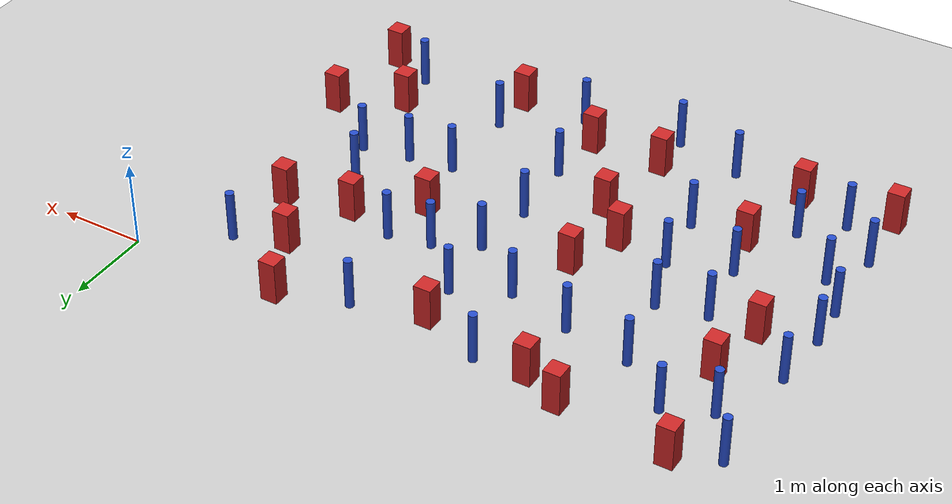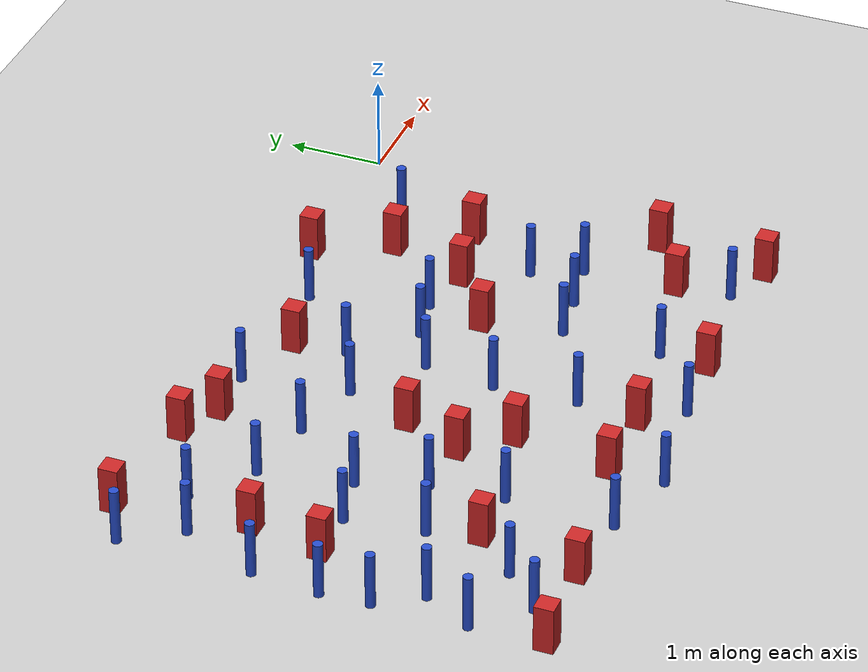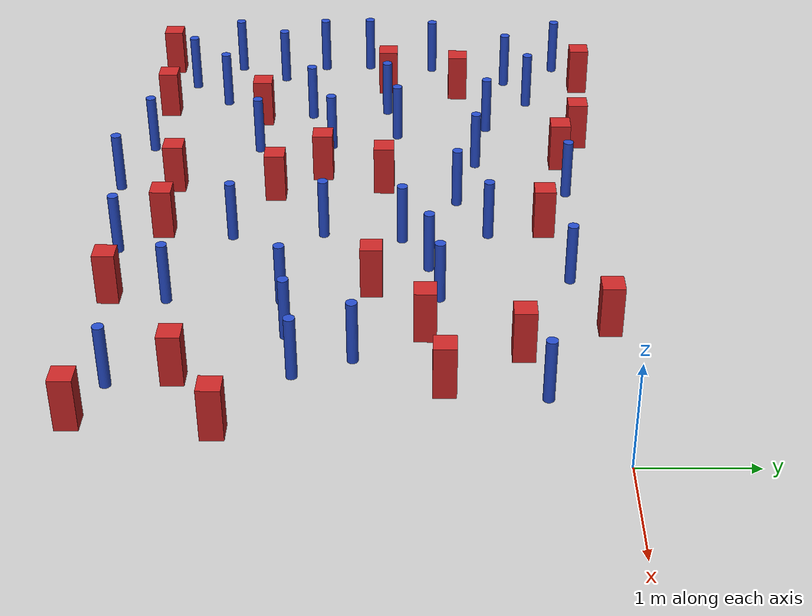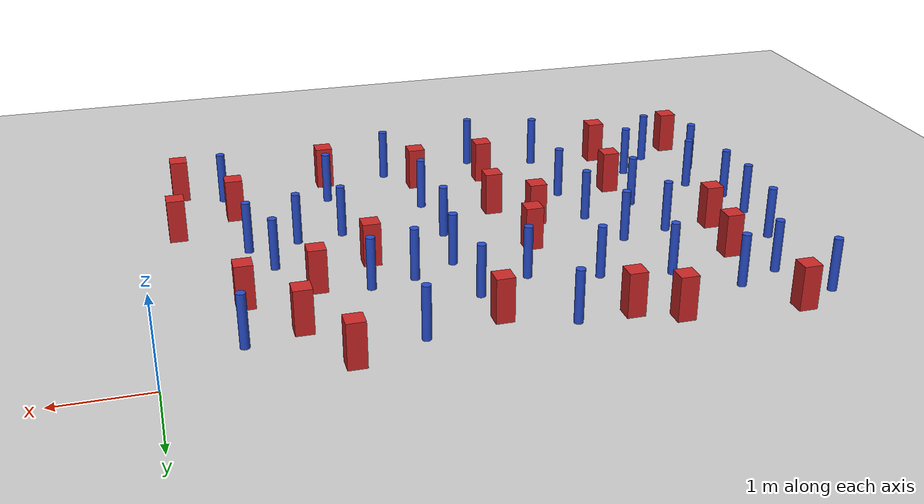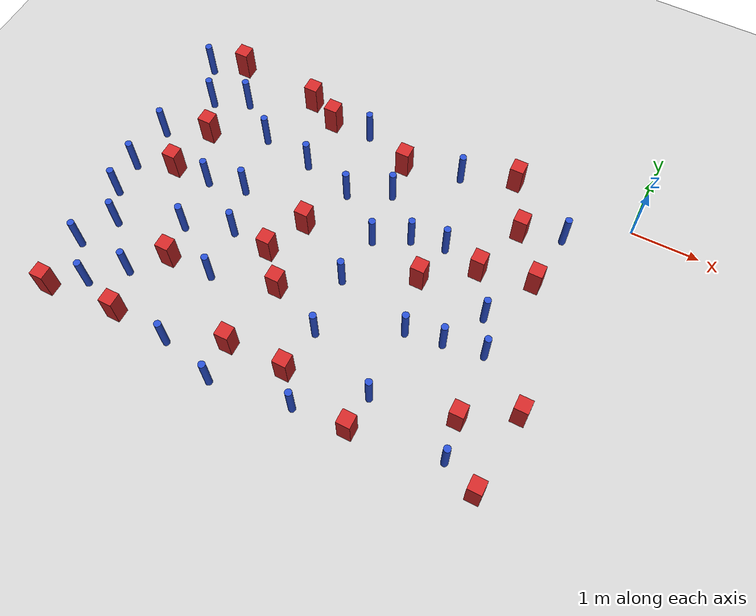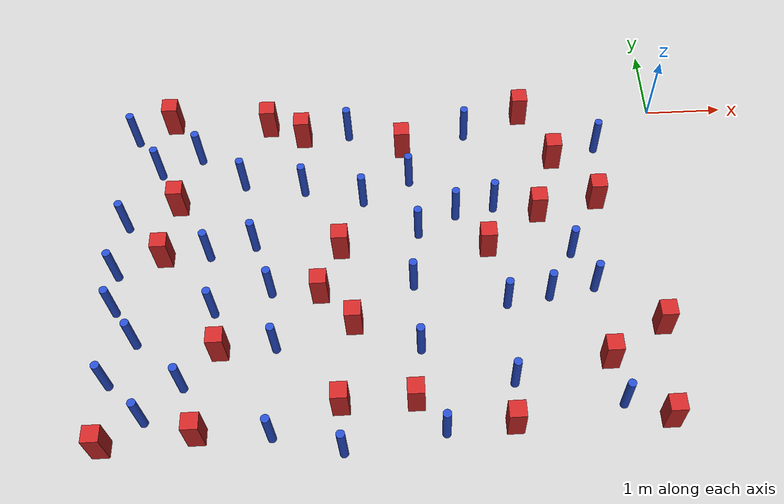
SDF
<sdf version="1.6">
 <world name="default">
  <model name="ground_plane">
   <static>1</static>
   <link name="link">
    <collision name="collision">
     <geometry><plane><normal>0 0 1</normal><size>100 100</size></plane></geometry>
     <surface><friction><ode><mu>100</mu><mu2>50</mu2></ode></friction></surface>
    </collision>
    <visual name="visual">
     <cast_shadows>0</cast_shadows>
     <geometry><plane><normal>0 0 1</normal><size>100 100</size></plane></geometry>
     <material>
      <ambient>1.0 1.0 1.0 1.0</ambient>
      <diffuse>0.8 0.8 0.8 1.0</diffuse>
      <specular>0.01 0.01 0.01 1.000000</specular>
     </material>
    </visual>
   </link>
  </model>
  <model name="square_post_obstacle2">
   <static>true</static>
   <pose>-6.2875825248 -1.26073202233 1.91545236811e-07 -7.35059704564e-06 1.12565212e-07 2.39332434364e-05</pose>
   <link name="link">
    <pose>0 0 0.25 0 -0 0</pose>
    <inertial>
     <mass>100</mass>
     <inertia>
      <ixx>0.166667</ixx>
      <ixy>0</ixy>
      <ixz>0</ixz>
      <iyy>0.166667</iyy>
      <iyz>0</iyz>
      <izz>0.166667</izz>
     </inertia>
    </inertial>
    <collision name="collision"><geometry><box><size>.2 .2 .5</size></box></geometry></collision>
    <visual name="visual">
     <geometry><box><size>.2 .2 .5</size></box></geometry>
     <material>
      <script><name>Gazebo/Red</name><uri>file://media/materials/scripts/gazebo.material</uri></script>
     </material>
    </visual>
   </link>
  </model>
  <model name="square_post_obstacle14">
   <static>true</static>
   <pose>-1.70999980943 -1.6093661849 1.91545236811e-07 -7.35059704564e-06 1.12565212e-07 2.39332434364e-05</pose>
   <link name="link">
    <pose>0 0 0.25 0 -0 0</pose>
    <inertial>
     <mass>100</mass>
     <inertia>
      <ixx>0.166667</ixx>
      <ixy>0</ixy>
      <ixz>0</ixz>
      <iyy>0.166667</iyy>
      <iyz>0</iyz>
      <izz>0.166667</izz>
     </inertia>
    </inertial>
    <collision name="collision"><geometry><box><size>.2 .2 .5</size></box></geometry></collision>
    <visual name="visual">
     <geometry><box><size>.2 .2 .5</size></box></geometry>
     <material>
      <script><name>Gazebo/Red</name><uri>file://media/materials/scripts/gazebo.material</uri></script>
     </material>
    </visual>
   </link>
  </model>
  <model name="pole_obstacle11">
   <static>true</static>
   <pose>-4.11229383188 -0.209701070178 7.38925637345e-09 -8.471706928e-08 1.24976765089e-08 -1.74513093017e-07</pose>
   <link name="link">
    <pose>0 0 0.3 0 -0 0</pose>
    <inertial>
     <mass>1</mass>
     <inertia><ixx>0.145833</ixx><ixy>0</ixy><ixz>0</ixz><iyy>0.145833</iyy><iyz>0</iyz><izz>0.125</izz></inertia>
    </inertial>
    <collision name="collision">
     <geometry><cylinder><radius>0.05</radius><length>.6</length></cylinder></geometry>
    </collision>
    <visual name="visual">
     <geometry><cylinder><radius>0.05</radius><length>.6</length></cylinder></geometry>
     <material>
      <script><name>Gazebo/Blue</name><uri>file://media/materials/scripts/gazebo.material</uri></script>
     </material>
    </visual>
   </link>
  </model>
  <model name="pole_obstacle16">
   <static>true</static>
   <pose>-6.57130435737 -0.727789539523 7.38925637345e-09 -8.47170692799e-08 1.24976765038e-08 -1.74513093018e-07</pose>
   <link name="link">
    <pose>0 0 0.3 0 -0 0</pose>
    <inertial>
     <mass>1</mass>
     <inertia><ixx>0.145833</ixx><ixy>0</ixy><ixz>0</ixz><iyy>0.145833</iyy><iyz>0</iyz><izz>0.125</izz></inertia>
    </inertial>
    <collision name="collision">
     <geometry><cylinder><radius>0.05</radius><length>.6</length></cylinder></geometry>
    </collision>
    <visual name="visual">
     <geometry><cylinder><radius>0.05</radius><length>.6</length></cylinder></geometry>
     <material>
      <script><name>Gazebo/Blue</name><uri>file://media/materials/scripts/gazebo.material</uri></script>
     </material>
    </visual>
   </link>
  </model>
  <model name="square_post_obstacle25">
   <static>true</static>
   <pose>-0.489919108578 -4.46961906929 1.91545236811e-07 -7.35059704564e-06 1.12565212e-07 2.39332434364e-05</pose>
   <link name="link">
    <pose>0 0 0.25 0 -0 0</pose>
    <inertial>
     <mass>100</mass>
     <inertia>
      <ixx>0.166667</ixx>
      <ixy>0</ixy>
      <ixz>0</ixz>
      <iyy>0.166667</iyy>
      <iyz>0</iyz>
      <izz>0.166667</izz>
     </inertia>
    </inertial>
    <collision name="collision"><geometry><box><size>.2 .2 .5</size></box></geometry></collision>
    <visual name="visual">
     <geometry><box><size>.2 .2 .5</size></box></geometry>
     <material>
      <script><name>Gazebo/Red</name><uri>file://media/materials/scripts/gazebo.material</uri></script>
     </material>
    </visual>
   </link>
  </model>
  <model name="pole_obstacle19">
   <static>true</static>
   <pose>-5.46895526762 -0.965439361181 7.38925637345e-09 -8.47170692799e-08 1.24976765054e-08 -1.74513093018e-07</pose>
   <link name="link">
    <pose>0 0 0.3 0 -0 0</pose>
    <inertial>
     <mass>1</mass>
     <inertia><ixx>0.145833</ixx><ixy>0</ixy><ixz>0</ixz><iyy>0.145833</iyy><iyz>0</iyz><izz>0.125</izz></inertia>
    </inertial>
    <collision name="collision">
     <geometry><cylinder><radius>0.05</radius><length>.6</length></cylinder></geometry>
    </collision>
    <visual name="visual">
     <geometry><cylinder><radius>0.05</radius><length>.6</length></cylinder></geometry>
     <material>
      <script><name>Gazebo/Blue</name><uri>file://media/materials/scripts/gazebo.material</uri></script>
     </material>
    </visual>
   </link>
  </model>
  <model name="pole_obstacle21">
   <static>true</static>
   <pose>-2.56661440049 -0.285708102733 7.38925637345e-09 -8.47170692793e-08 1.24976764479e-08 -1.74513093039e-07</pose>
   <link name="link">
    <pose>0 0 0.3 0 -0 0</pose>
    <inertial>
     <mass>1</mass>
     <inertia><ixx>0.145833</ixx><ixy>0</ixy><ixz>0</ixz><iyy>0.145833</iyy><iyz>0</iyz><izz>0.125</izz></inertia>
    </inertial>
    <collision name="collision">
     <geometry><cylinder><radius>0.05</radius><length>.6</length></cylinder></geometry>
    </collision>
    <visual name="visual">
     <geometry><cylinder><radius>0.05</radius><length>.6</length></cylinder></geometry>
     <material>
      <script><name>Gazebo/Blue</name><uri>file://media/materials/scripts/gazebo.material</uri></script>
     </material>
    </visual>
   </link>
  </model>
  <model name="pole_obstacle22">
   <static>true</static>
   <pose>-6.92222152611 -1.54001645784 7.38925637345e-09 -8.471706928e-08 1.24976765134e-08 -1.74513093015e-07</pose>
   <link name="link">
    <pose>0 0 0.3 0 -0 0</pose>
    <inertial>
     <mass>1</mass>
     <inertia><ixx>0.145833</ixx><ixy>0</ixy><ixz>0</ixz><iyy>0.145833</iyy><iyz>0</iyz><izz>0.125</izz></inertia>
    </inertial>
    <collision name="collision">
     <geometry><cylinder><radius>0.05</radius><length>.6</length></cylinder></geometry>
    </collision>
    <visual name="visual">
     <geometry><cylinder><radius>0.05</radius><length>.6</length></cylinder></geometry>
     <material>
      <script><name>Gazebo/Blue</name><uri>file://media/materials/scripts/gazebo.material</uri></script>
     </material>
    </visual>
   </link>
  </model>
  <model name="pole_obstacle26">
   <static>true</static>
   <pose>-5.072176998 -2.59141146056 7.38925637345e-09 -8.47170692798e-08 1.24976764937e-08 -1.74513093023e-07</pose>
   <link name="link">
    <pose>0 0 0.3 0 -0 0</pose>
    <inertial>
     <mass>1</mass>
     <inertia><ixx>0.145833</ixx><ixy>0</ixy><ixz>0</ixz><iyy>0.145833</iyy><iyz>0</iyz><izz>0.125</izz></inertia>
    </inertial>
    <collision name="collision">
     <geometry><cylinder><radius>0.05</radius><length>.6</length></cylinder></geometry>
    </collision>
    <visual name="visual">
     <geometry><cylinder><radius>0.05</radius><length>.6</length></cylinder></geometry>
     <material>
      <script><name>Gazebo/Blue</name><uri>file://media/materials/scripts/gazebo.material</uri></script>
     </material>
    </visual>
   </link>
  </model>
  <model name="pole_obstacle28">
   <static>true</static>
   <pose>-2.20710261584 -2.8995986042 7.38925637345e-09 -8.47170692798e-08 1.24976764939e-08 -1.74513093025e-07</pose>
   <link name="link">
    <pose>0 0 0.3 0 -0 0</pose>
    <inertial>
     <mass>1</mass>
     <inertia><ixx>0.145833</ixx><ixy>0</ixy><ixz>0</ixz><iyy>0.145833</iyy><iyz>0</iyz><izz>0.125</izz></inertia>
    </inertial>
    <collision name="collision">
     <geometry><cylinder><radius>0.05</radius><length>.6</length></cylinder></geometry>
    </collision>
    <visual name="visual">
     <geometry><cylinder><radius>0.05</radius><length>.6</length></cylinder></geometry>
     <material>
      <script><name>Gazebo/Blue</name><uri>file://media/materials/scripts/gazebo.material</uri></script>
     </material>
    </visual>
   </link>
  </model>
  <model name="pole_obstacle35">
   <static>true</static>
   <pose>-6.46919555741 -4.19104773729 7.38925637345e-09 -8.47170692796e-08 1.24976764786e-08 -1.74513093032e-07</pose>
   <link name="link">
    <pose>0 0 0.3 0 -0 0</pose>
    <inertial>
     <mass>1</mass>
     <inertia><ixx>0.145833</ixx><ixy>0</ixy><ixz>0</ixz><iyy>0.145833</iyy><iyz>0</iyz><izz>0.125</izz></inertia>
    </inertial>
    <collision name="collision">
     <geometry><cylinder><radius>0.05</radius><length>.6</length></cylinder></geometry>
    </collision>
    <visual name="visual">
     <geometry><cylinder><radius>0.05</radius><length>.6</length></cylinder></geometry>
     <material>
      <script><name>Gazebo/Blue</name><uri>file://media/materials/scripts/gazebo.material</uri></script>
     </material>
    </visual>
   </link>
  </model>
  <model name="pole_obstacle43">
   <static>true</static>
   <pose>-2.21513857448 -3.93363357848 7.38925637345e-09 -8.47170692798e-08 1.24976764939e-08 -1.74513093025e-07</pose>
   <link name="link">
    <pose>0 0 0.3 0 -0 0</pose>
    <inertial>
     <mass>1</mass>
     <inertia><ixx>0.145833</ixx><ixy>0</ixy><ixz>0</ixz><iyy>0.145833</iyy><iyz>0</iyz><izz>0.125</izz></inertia>
    </inertial>
    <collision name="collision">
     <geometry><cylinder><radius>0.05</radius><length>.6</length></cylinder></geometry>
    </collision>
    <visual name="visual">
     <geometry><cylinder><radius>0.05</radius><length>.6</length></cylinder></geometry>
     <material>
      <script><name>Gazebo/Blue</name><uri>file://media/materials/scripts/gazebo.material</uri></script>
     </material>
    </visual>
   </link>
  </model>
  <model name="square_post_obstacle46">
   <static>true</static>
   <pose>-1.0721443577 -3.70489745221 1.91545236811e-07 -7.35059704564e-06 1.12565212e-07 2.39332434364e-05</pose>
   <link name="link">
    <pose>0 0 0.25 0 -0 0</pose>
    <inertial>
     <mass>100</mass>
     <inertia>
      <ixx>0.166667</ixx>
      <ixy>0</ixy>
      <ixz>0</ixz>
      <iyy>0.166667</iyy>
      <iyz>0</iyz>
      <izz>0.166667</izz>
     </inertia>
    </inertial>
    <collision name="collision"><geometry><box><size>.2 .2 .5</size></box></geometry></collision>
    <visual name="visual">
     <geometry><box><size>.2 .2 .5</size></box></geometry>
     <material>
      <script><name>Gazebo/Red</name><uri>file://media/materials/scripts/gazebo.material</uri></script>
     </material>
    </visual>
   </link>
  </model>
  <model name="square_post_obstacle48">
   <static>true</static>
   <pose>-3.40032660181 -0.479547880082 1.91545236811e-07 -7.35059704564e-06 1.12565212e-07 2.39332434364e-05</pose>
   <link name="link">
    <pose>0 0 0.25 0 -0 0</pose>
    <inertial>
     <mass>100</mass>
     <inertia>
      <ixx>0.166667</ixx>
      <ixy>0</ixy>
      <ixz>0</ixz>
      <iyy>0.166667</iyy>
      <iyz>0</iyz>
      <izz>0.166667</izz>
     </inertia>
    </inertial>
    <collision name="collision"><geometry><box><size>.2 .2 .5</size></box></geometry></collision>
    <visual name="visual">
     <geometry><box><size>.2 .2 .5</size></box></geometry>
     <material>
      <script><name>Gazebo/Red</name><uri>file://media/materials/scripts/gazebo.material</uri></script>
     </material>
    </visual>
   </link>
  </model>
  <model name="square_post_obstacle52">
   <static>true</static>
   <pose>-1.43188867617 -0.770394087419 1.91545236811e-07 -7.35059704564e-06 1.12565212e-07 2.39332434364e-05</pose>
   <link name="link">
    <pose>0 0 0.25 0 -0 0</pose>
    <inertial>
     <mass>100</mass>
     <inertia>
      <ixx>0.166667</ixx>
      <ixy>0</ixy>
      <ixz>0</ixz>
      <iyy>0.166667</iyy>
      <iyz>0</iyz>
      <izz>0.166667</izz>
     </inertia>
    </inertial>
    <collision name="collision"><geometry><box><size>.2 .2 .5</size></box></geometry></collision>
    <visual name="visual">
     <geometry><box><size>.2 .2 .5</size></box></geometry>
     <material>
      <script><name>Gazebo/Red</name><uri>file://media/materials/scripts/gazebo.material</uri></script>
     </material>
    </visual>
   </link>
  </model>
  <model name="square_post_obstacle53">
   <static>true</static>
   <pose>-6.90593993662 -4.48079498169 1.91545236811e-07 -7.35059704564e-06 1.12565212e-07 2.39332434364e-05</pose>
   <link name="link">
    <pose>0 0 0.25 0 -0 0</pose>
    <inertial>
     <mass>100</mass>
     <inertia>
      <ixx>0.166667</ixx>
      <ixy>0</ixy>
      <ixz>0</ixz>
      <iyy>0.166667</iyy>
      <iyz>0</iyz>
      <izz>0.166667</izz>
     </inertia>
    </inertial>
    <collision name="collision"><geometry><box><size>.2 .2 .5</size></box></geometry></collision>
    <visual name="visual">
     <geometry><box><size>.2 .2 .5</size></box></geometry>
     <material>
      <script><name>Gazebo/Red</name><uri>file://media/materials/scripts/gazebo.material</uri></script>
     </material>
    </visual>
   </link>
  </model>
  <model name="square_post_obstacle55">
   <static>true</static>
   <pose>-4.47122927471 -2.64655795968 1.91545236811e-07 -7.35059704564e-06 1.12565212e-07 2.39332434364e-05</pose>
   <link name="link">
    <pose>0 0 0.25 0 -0 0</pose>
    <inertial>
     <mass>100</mass>
     <inertia>
      <ixx>0.166667</ixx>
      <ixy>0</ixy>
      <ixz>0</ixz>
      <iyy>0.166667</iyy>
      <iyz>0</iyz>
      <izz>0.166667</izz>
     </inertia>
    </inertial>
    <collision name="collision"><geometry><box><size>.2 .2 .5</size></box></geometry></collision>
    <visual name="visual">
     <geometry><box><size>.2 .2 .5</size></box></geometry>
     <material>
      <script><name>Gazebo/Red</name><uri>file://media/materials/scripts/gazebo.material</uri></script>
     </material>
    </visual>
   </link>
  </model>
  <model name="pole_obstacle55">
   <static>true</static>
   <pose>-4.68918285713 -1.09975630199 7.38925637345e-09 -8.471706928e-08 1.24976765134e-08 -1.74513093015e-07</pose>
   <link name="link">
    <pose>0 0 0.3 0 -0 0</pose>
    <inertial>
     <mass>1</mass>
     <inertia><ixx>0.145833</ixx><ixy>0</ixy><ixz>0</ixz><iyy>0.145833</iyy><iyz>0</iyz><izz>0.125</izz></inertia>
    </inertial>
    <collision name="collision">
     <geometry><cylinder><radius>0.05</radius><length>.6</length></cylinder></geometry>
    </collision>
    <visual name="visual">
     <geometry><cylinder><radius>0.05</radius><length>.6</length></cylinder></geometry>
     <material>
      <script><name>Gazebo/Blue</name><uri>file://media/materials/scripts/gazebo.material</uri></script>
     </material>
    </visual>
   </link>
  </model>
  <model name="square_post_obstacle59">
   <static>true</static>
   <pose>-5.84744076799 -4.39331746192 1.91545236811e-07 -7.35059704564e-06 1.12565212e-07 2.39332434364e-05</pose>
   <link name="link">
    <pose>0 0 0.25 0 -0 0</pose>
    <inertial>
     <mass>100</mass>
     <inertia>
      <ixx>0.166667</ixx>
      <ixy>0</ixy>
      <ixz>0</ixz>
      <iyy>0.166667</iyy>
      <iyz>0</iyz>
      <izz>0.166667</izz>
     </inertia>
    </inertial>
    <collision name="collision"><geometry><box><size>.2 .2 .5</size></box></geometry></collision>
    <visual name="visual">
     <geometry><box><size>.2 .2 .5</size></box></geometry>
     <material>
      <script><name>Gazebo/Red</name><uri>file://media/materials/scripts/gazebo.material</uri></script>
     </material>
    </visual>
   </link>
  </model>
  <model name="pole_obstacle60">
   <static>true</static>
   <pose>-3.93214485269 -1.30108543726 7.38925637345e-09 -8.471706928e-08 1.24976765152e-08 -1.74513093012e-07</pose>
   <link name="link">
    <pose>0 0 0.3 0 -0 0</pose>
    <inertial>
     <mass>1</mass>
     <inertia><ixx>0.145833</ixx><ixy>0</ixy><ixz>0</ixz><iyy>0.145833</iyy><iyz>0</iyz><izz>0.125</izz></inertia>
    </inertial>
    <collision name="collision">
     <geometry><cylinder><radius>0.05</radius><length>.6</length></cylinder></geometry>
    </collision>
    <visual name="visual">
     <geometry><cylinder><radius>0.05</radius><length>.6</length></cylinder></geometry>
     <material>
      <script><name>Gazebo/Blue</name><uri>file://media/materials/scripts/gazebo.material</uri></script>
     </material>
    </visual>
   </link>
  </model>
  <model name="pole_obstacle62">
   <static>true</static>
   <pose>-3.28085133388 -3.4480141808 7.38925637345e-09 -8.47170692798e-08 1.24976764939e-08 -1.74513093025e-07</pose>
   <link name="link">
    <pose>0 0 0.3 0 -0 0</pose>
    <inertial>
     <mass>1</mass>
     <inertia><ixx>0.145833</ixx><ixy>0</ixy><ixz>0</ixz><iyy>0.145833</iyy><iyz>0</iyz><izz>0.125</izz></inertia>
    </inertial>
    <collision name="collision">
     <geometry><cylinder><radius>0.05</radius><length>.6</length></cylinder></geometry>
    </collision>
    <visual name="visual">
     <geometry><cylinder><radius>0.05</radius><length>.6</length></cylinder></geometry>
     <material>
      <script><name>Gazebo/Blue</name><uri>file://media/materials/scripts/gazebo.material</uri></script>
     </material>
    </visual>
   </link>
  </model>
  <model name="pole_obstacle64">
   <static>true</static>
   <pose>-6.65644235471 -3.20154008552 7.38925637345e-09 -8.47170692798e-08 1.24976764937e-08 -1.74513093023e-07</pose>
   <link name="link">
    <pose>0 0 0.3 0 -0 0</pose>
    <inertial>
     <mass>1</mass>
     <inertia><ixx>0.145833</ixx><ixy>0</ixy><ixz>0</ixz><iyy>0.145833</iyy><iyz>0</iyz><izz>0.125</izz></inertia>
    </inertial>
    <collision name="collision">
     <geometry><cylinder><radius>0.05</radius><length>.6</length></cylinder></geometry>
    </collision>
    <visual name="visual">
     <geometry><cylinder><radius>0.05</radius><length>.6</length></cylinder></geometry>
     <material>
      <script><name>Gazebo/Blue</name><uri>file://media/materials/scripts/gazebo.material</uri></script>
     </material>
    </visual>
   </link>
  </model>
  <model name="square_post_obstacle67">
   <static>true</static>
   <pose>-2.26283042337 -4.45116772735 1.91545236811e-07 -7.35059704564e-06 1.12565212e-07 2.39332434364e-05</pose>
   <link name="link">
    <pose>0 0 0.25 0 -0 0</pose>
    <inertial>
     <mass>100</mass>
     <inertia>
      <ixx>0.166667</ixx>
      <ixy>0</ixy>
      <ixz>0</ixz>
      <iyy>0.166667</iyy>
      <iyz>0</iyz>
      <izz>0.166667</izz>
     </inertia>
    </inertial>
    <collision name="collision"><geometry><box><size>.2 .2 .5</size></box></geometry></collision>
    <visual name="visual">
     <geometry><box><size>.2 .2 .5</size></box></geometry>
     <material>
      <script><name>Gazebo/Red</name><uri>file://media/materials/scripts/gazebo.material</uri></script>
     </material>
    </visual>
   </link>
  </model>
  <model name="pole_obstacle66">
   <static>true</static>
   <pose>-5.00918769924 -4.45427880469 7.38925637345e-09 -8.47170692796e-08 1.24976764786e-08 -1.74513093032e-07</pose>
   <link name="link">
    <pose>0 0 0.3 0 -0 0</pose>
    <inertial>
     <mass>1</mass>
     <inertia><ixx>0.145833</ixx><ixy>0</ixy><ixz>0</ixz><iyy>0.145833</iyy><iyz>0</iyz><izz>0.125</izz></inertia>
    </inertial>
    <collision name="collision">
     <geometry><cylinder><radius>0.05</radius><length>.6</length></cylinder></geometry>
    </collision>
    <visual name="visual">
     <geometry><cylinder><radius>0.05</radius><length>.6</length></cylinder></geometry>
     <material>
      <script><name>Gazebo/Blue</name><uri>file://media/materials/scripts/gazebo.material</uri></script>
     </material>
    </visual>
   </link>
  </model>
  <model name="pole_obstacle77">
   <static>true</static>
   <pose>-1.11858955454 -2.72490555595 7.38925637345e-09 -8.47170692799e-08 1.24976765053e-08 -1.74513093017e-07</pose>
   <link name="link">
    <pose>0 0 0.3 0 -0 0</pose>
    <inertial>
     <mass>1</mass>
     <inertia><ixx>0.145833</ixx><ixy>0</ixy><ixz>0</ixz><iyy>0.145833</iyy><iyz>0</iyz><izz>0.125</izz></inertia>
    </inertial>
    <collision name="collision">
     <geometry><cylinder><radius>0.05</radius><length>.6</length></cylinder></geometry>
    </collision>
    <visual name="visual">
     <geometry><cylinder><radius>0.05</radius><length>.6</length></cylinder></geometry>
     <material>
      <script><name>Gazebo/Blue</name><uri>file://media/materials/scripts/gazebo.material</uri></script>
     </material>
    </visual>
   </link>
  </model>
  <model name="pole_obstacle78">
   <static>true</static>
   <pose>-6.97969060647 -2.24909445358 7.38925637345e-09 -8.47170692798e-08 1.24976764937e-08 -1.74513093023e-07</pose>
   <link name="link">
    <pose>0 0 0.3 0 -0 0</pose>
    <inertial>
     <mass>1</mass>
     <inertia><ixx>0.145833</ixx><ixy>0</ixy><ixz>0</ixz><iyy>0.145833</iyy><iyz>0</iyz><izz>0.125</izz></inertia>
    </inertial>
    <collision name="collision">
     <geometry><cylinder><radius>0.05</radius><length>.6</length></cylinder></geometry>
    </collision>
    <visual name="visual">
     <geometry><cylinder><radius>0.05</radius><length>.6</length></cylinder></geometry>
     <material>
      <script><name>Gazebo/Blue</name><uri>file://media/materials/scripts/gazebo.material</uri></script>
     </material>
    </visual>
   </link>
  </model>
  <model name="square_post_obstacle78">
   <static>true</static>
   <pose>-4.21872200971 -2.02426046555 1.91545236811e-07 -7.35059704564e-06 1.12565212e-07 2.39332434364e-05</pose>
   <link name="link">
    <pose>0 0 0.25 0 -0 0</pose>
    <inertial>
     <mass>100</mass>
     <inertia>
      <ixx>0.166667</ixx>
      <ixy>0</ixy>
      <ixz>0</ixz>
      <iyy>0.166667</iyy>
      <iyz>0</iyz>
      <izz>0.166667</izz>
     </inertia>
    </inertial>
    <collision name="collision"><geometry><box><size>.2 .2 .5</size></box></geometry></collision>
    <visual name="visual">
     <geometry><box><size>.2 .2 .5</size></box></geometry>
     <material>
      <script><name>Gazebo/Red</name><uri>file://media/materials/scripts/gazebo.material</uri></script>
     </material>
    </visual>
   </link>
  </model>
  <model name="pole_obstacle80">
   <static>true</static>
   <pose>-5.29468543069 -1.90928774373 7.38925637345e-09 -8.471706928e-08 1.24976765134e-08 -1.74513093015e-07</pose>
   <link name="link">
    <pose>0 0 0.3 0 -0 0</pose>
    <inertial>
     <mass>1</mass>
     <inertia><ixx>0.145833</ixx><ixy>0</ixy><ixz>0</ixz><iyy>0.145833</iyy><iyz>0</iyz><izz>0.125</izz></inertia>
    </inertial>
    <collision name="collision">
     <geometry><cylinder><radius>0.05</radius><length>.6</length></cylinder></geometry>
    </collision>
    <visual name="visual">
     <geometry><cylinder><radius>0.05</radius><length>.6</length></cylinder></geometry>
     <material>
      <script><name>Gazebo/Blue</name><uri>file://media/materials/scripts/gazebo.material</uri></script>
     </material>
    </visual>
   </link>
  </model>
  <model name="pole_obstacle87">
   <static>true</static>
   <pose>-4.19892360576 -4.67513462776 7.38925637345e-09 -8.47170692796e-08 1.24976764786e-08 -1.74513093032e-07</pose>
   <link name="link">
    <pose>0 0 0.3 0 -0 0</pose>
    <inertial>
     <mass>1</mass>
     <inertia><ixx>0.145833</ixx><ixy>0</ixy><ixz>0</ixz><iyy>0.145833</iyy><iyz>0</iyz><izz>0.125</izz></inertia>
    </inertial>
    <collision name="collision">
     <geometry><cylinder><radius>0.05</radius><length>.6</length></cylinder></geometry>
    </collision>
    <visual name="visual">
     <geometry><cylinder><radius>0.05</radius><length>.6</length></cylinder></geometry>
     <material>
      <script><name>Gazebo/Blue</name><uri>file://media/materials/scripts/gazebo.material</uri></script>
     </material>
    </visual>
   </link>
  </model>
  <model name="pole_obstacle90">
   <static>true</static>
   <pose>-6.9317810287 -0.157773898993 7.38925637345e-09 -8.471706928e-08 1.24976765188e-08 -1.74513093011e-07</pose>
   <link name="link">
    <pose>0 0 0.3 0 -0 0</pose>
    <inertial>
     <mass>1</mass>
     <inertia><ixx>0.145833</ixx><ixy>0</ixy><ixz>0</ixz><iyy>0.145833</iyy><iyz>0</iyz><izz>0.125</izz></inertia>
    </inertial>
    <collision name="collision">
     <geometry><cylinder><radius>0.05</radius><length>.6</length></cylinder></geometry>
    </collision>
    <visual name="visual">
     <geometry><cylinder><radius>0.05</radius><length>.6</length></cylinder></geometry>
     <material>
      <script><name>Gazebo/Blue</name><uri>file://media/materials/scripts/gazebo.material</uri></script>
     </material>
    </visual>
   </link>
  </model>
  <model name="square_post_obstacle84">
   <static>true</static>
   <pose>-5.16797104272 -0.0289699123766 1.91545236811e-07 -7.35059704564e-06 1.12565212e-07 2.39332434364e-05</pose>
   <link name="link">
    <pose>0 0 0.25 0 -0 0</pose>
    <inertial>
     <mass>100</mass>
     <inertia>
      <ixx>0.166667</ixx>
      <ixy>0</ixy>
      <ixz>0</ixz>
      <iyy>0.166667</iyy>
      <iyz>0</iyz>
      <izz>0.166667</izz>
     </inertia>
    </inertial>
    <collision name="collision"><geometry><box><size>.2 .2 .5</size></box></geometry></collision>
    <visual name="visual">
     <geometry><box><size>.2 .2 .5</size></box></geometry>
     <material>
      <script><name>Gazebo/Red</name><uri>file://media/materials/scripts/gazebo.material</uri></script>
     </material>
    </visual>
   </link>
  </model>
  <model name="square_post_obstacle90">
   <static>true</static>
   <pose>-4.22815033878 -4.11739488337 1.91545236811e-07 -7.35059704564e-06 1.12565212e-07 2.39332434364e-05</pose>
   <link name="link">
    <pose>0 0 0.25 0 -0 0</pose>
    <inertial>
     <mass>100</mass>
     <inertia>
      <ixx>0.166667</ixx>
      <ixy>0</ixy>
      <ixz>0</ixz>
      <iyy>0.166667</iyy>
      <iyz>0</iyz>
      <izz>0.166667</izz>
     </inertia>
    </inertial>
    <collision name="collision"><geometry><box><size>.2 .2 .5</size></box></geometry></collision>
    <visual name="visual">
     <geometry><box><size>.2 .2 .5</size></box></geometry>
     <material>
      <script><name>Gazebo/Red</name><uri>file://media/materials/scripts/gazebo.material</uri></script>
     </material>
    </visual>
   </link>
  </model>
  <model name="pole_obstacle105">
   <static>true</static>
   <pose>-2.75684135779 -1.57644741918 7.38925637345e-09 -8.471706928e-08 1.24976765152e-08 -1.74513093012e-07</pose>
   <link name="link">
    <pose>0 0 0.3 0 -0 0</pose>
    <inertial>
     <mass>1</mass>
     <inertia><ixx>0.145833</ixx><ixy>0</ixy><ixz>0</ixz><iyy>0.145833</iyy><iyz>0</iyz><izz>0.125</izz></inertia>
    </inertial>
    <collision name="collision">
     <geometry><cylinder><radius>0.05</radius><length>.6</length></cylinder></geometry>
    </collision>
    <visual name="visual">
     <geometry><cylinder><radius>0.05</radius><length>.6</length></cylinder></geometry>
     <material>
      <script><name>Gazebo/Blue</name><uri>file://media/materials/scripts/gazebo.material</uri></script>
     </material>
    </visual>
   </link>
  </model>
  <model name="pole_obstacle107">
   <static>true</static>
   <pose>-5.85743016166 -2.02688774964 7.38925637345e-09 -8.471706928e-08 1.2497676506e-08 -1.74513093017e-07</pose>
   <link name="link">
    <pose>0 0 0.3 0 -0 0</pose>
    <inertial>
     <mass>1</mass>
     <inertia><ixx>0.145833</ixx><ixy>0</ixy><ixz>0</ixz><iyy>0.145833</iyy><iyz>0</iyz><izz>0.125</izz></inertia>
    </inertial>
    <collision name="collision">
     <geometry><cylinder><radius>0.05</radius><length>.6</length></cylinder></geometry>
    </collision>
    <visual name="visual">
     <geometry><cylinder><radius>0.05</radius><length>.6</length></cylinder></geometry>
     <material>
      <script><name>Gazebo/Blue</name><uri>file://media/materials/scripts/gazebo.material</uri></script>
     </material>
    </visual>
   </link>
  </model>
  <model name="pole_obstacle109">
   <static>true</static>
   <pose>-1.6836778535 -2.8221296387 7.38925637345e-09 -8.47170692799e-08 1.24976765053e-08 -1.74513093017e-07</pose>
   <link name="link">
    <pose>0 0 0.3 0 -0 0</pose>
    <inertial>
     <mass>1</mass>
     <inertia><ixx>0.145833</ixx><ixy>0</ixy><ixz>0</ixz><iyy>0.145833</iyy><iyz>0</iyz><izz>0.125</izz></inertia>
    </inertial>
    <collision name="collision">
     <geometry><cylinder><radius>0.05</radius><length>.6</length></cylinder></geometry>
    </collision>
    <visual name="visual">
     <geometry><cylinder><radius>0.05</radius><length>.6</length></cylinder></geometry>
     <material>
      <script><name>Gazebo/Blue</name><uri>file://media/materials/scripts/gazebo.material</uri></script>
     </material>
    </visual>
   </link>
  </model>
  <model name="pole_obstacle110">
   <static>true</static>
   <pose>-6.06411060926 -0.504183012934 7.38925637345e-09 -8.47170692798e-08 1.24976765005e-08 -1.74513093021e-07</pose>
   <link name="link">
    <pose>0 0 0.3 0 -0 0</pose>
    <inertial>
     <mass>1</mass>
     <inertia><ixx>0.145833</ixx><ixy>0</ixy><ixz>0</ixz><iyy>0.145833</iyy><iyz>0</iyz><izz>0.125</izz></inertia>
    </inertial>
    <collision name="collision">
     <geometry><cylinder><radius>0.05</radius><length>.6</length></cylinder></geometry>
    </collision>
    <visual name="visual">
     <geometry><cylinder><radius>0.05</radius><length>.6</length></cylinder></geometry>
     <material>
      <script><name>Gazebo/Blue</name><uri>file://media/materials/scripts/gazebo.material</uri></script>
     </material>
    </visual>
   </link>
  </model>
  <model name="pole_obstacle111">
   <static>true</static>
   <pose>-3.33250242898 -2.5792715937 7.38925637345e-09 -8.47170692798e-08 1.24976764939e-08 -1.74513093025e-07</pose>
   <link name="link">
    <pose>0 0 0.3 0 -0 0</pose>
    <inertial>
     <mass>1</mass>
     <inertia><ixx>0.145833</ixx><ixy>0</ixy><ixz>0</ixz><iyy>0.145833</iyy><iyz>0</iyz><izz>0.125</izz></inertia>
    </inertial>
    <collision name="collision">
     <geometry><cylinder><radius>0.05</radius><length>.6</length></cylinder></geometry>
    </collision>
    <visual name="visual">
     <geometry><cylinder><radius>0.05</radius><length>.6</length></cylinder></geometry>
     <material>
      <script><name>Gazebo/Blue</name><uri>file://media/materials/scripts/gazebo.material</uri></script>
     </material>
    </visual>
   </link>
  </model>
  <model name="pole_obstacle113">
   <static>true</static>
   <pose>-0.98681099828 -4.26302376062 7.38925637345e-09 -8.47170692799e-08 1.2497676509e-08 -1.74513093015e-07</pose>
   <link name="link">
    <pose>0 0 0.3 0 -0 0</pose>
    <inertial>
     <mass>1</mass>
     <inertia><ixx>0.145833</ixx><ixy>0</ixy><ixz>0</ixz><iyy>0.145833</iyy><iyz>0</iyz><izz>0.125</izz></inertia>
    </inertial>
    <collision name="collision">
     <geometry><cylinder><radius>0.05</radius><length>.6</length></cylinder></geometry>
    </collision>
    <visual name="visual">
     <geometry><cylinder><radius>0.05</radius><length>.6</length></cylinder></geometry>
     <material>
      <script><name>Gazebo/Blue</name><uri>file://media/materials/scripts/gazebo.material</uri></script>
     </material>
    </visual>
   </link>
  </model>
  <model name="pole_obstacle131">
   <static>true</static>
   <pose>-5.7551920033 -2.83294940451 7.38925637345e-09 -8.47170692798e-08 1.24976764937e-08 -1.74513093023e-07</pose>
   <link name="link">
    <pose>0 0 0.3 0 -0 0</pose>
    <inertial>
     <mass>1</mass>
     <inertia><ixx>0.145833</ixx><ixy>0</ixy><ixz>0</ixz><iyy>0.145833</iyy><iyz>0</iyz><izz>0.125</izz></inertia>
    </inertial>
    <collision name="collision">
     <geometry><cylinder><radius>0.05</radius><length>.6</length></cylinder></geometry>
    </collision>
    <visual name="visual">
     <geometry><cylinder><radius>0.05</radius><length>.6</length></cylinder></geometry>
     <material>
      <script><name>Gazebo/Blue</name><uri>file://media/materials/scripts/gazebo.material</uri></script>
     </material>
    </visual>
   </link>
  </model>
  <model name="pole_obstacle133">
   <static>true</static>
   <pose>-3.04185650102 -4.50551436476 7.38925637345e-09 -8.47170692798e-08 1.24976765033e-08 -1.74513093019e-07</pose>
   <link name="link">
    <pose>0 0 0.3 0 -0 0</pose>
    <inertial>
     <mass>1</mass>
     <inertia><ixx>0.145833</ixx><ixy>0</ixy><ixz>0</ixz><iyy>0.145833</iyy><iyz>0</iyz><izz>0.125</izz></inertia>
    </inertial>
    <collision name="collision">
     <geometry><cylinder><radius>0.05</radius><length>.6</length></cylinder></geometry>
    </collision>
    <visual name="visual">
     <geometry><cylinder><radius>0.05</radius><length>.6</length></cylinder></geometry>
     <material>
      <script><name>Gazebo/Blue</name><uri>file://media/materials/scripts/gazebo.material</uri></script>
     </material>
    </visual>
   </link>
  </model>
  <model name="square_post_obstacle115">
   <static>true</static>
   <pose>-0.936361322776 -1.44845768539 1.91545236811e-07 -7.35059704564e-06 1.12565212e-07 2.39332434364e-05</pose>
   <link name="link">
    <pose>0 0 0.25 0 -0 0</pose>
    <inertial>
     <mass>100</mass>
     <inertia>
      <ixx>0.166667</ixx>
      <ixy>0</ixy>
      <ixz>0</ixz>
      <iyy>0.166667</iyy>
      <iyz>0</iyz>
      <izz>0.166667</izz>
     </inertia>
    </inertial>
    <collision name="collision"><geometry><box><size>.2 .2 .5</size></box></geometry></collision>
    <visual name="visual">
     <geometry><box><size>.2 .2 .5</size></box></geometry>
     <material>
      <script><name>Gazebo/Red</name><uri>file://media/materials/scripts/gazebo.material</uri></script>
     </material>
    </visual>
   </link>
  </model>
  <model name="pole_obstacle135">
   <static>true</static>
   <pose>-6.9503056179 -2.75571105957 7.38925637345e-09 -8.47170692798e-08 1.24976764937e-08 -1.74513093023e-07</pose>
   <link name="link">
    <pose>0 0 0.3 0 -0 0</pose>
    <inertial>
     <mass>1</mass>
     <inertia><ixx>0.145833</ixx><ixy>0</ixy><ixz>0</ixz><iyy>0.145833</iyy><iyz>0</iyz><izz>0.125</izz></inertia>
    </inertial>
    <collision name="collision">
     <geometry><cylinder><radius>0.05</radius><length>.6</length></cylinder></geometry>
    </collision>
    <visual name="visual">
     <geometry><cylinder><radius>0.05</radius><length>.6</length></cylinder></geometry>
     <material>
      <script><name>Gazebo/Blue</name><uri>file://media/materials/scripts/gazebo.material</uri></script>
     </material>
    </visual>
   </link>
  </model>
  <model name="square_post_obstacle121">
   <static>true</static>
   <pose>-0.378776592566 -3.29345611995 1.91545236811e-07 -7.35059704564e-06 1.12565212e-07 2.39332434364e-05</pose>
   <link name="link">
    <pose>0 0 0.25 0 -0 0</pose>
    <inertial>
     <mass>100</mass>
     <inertia>
      <ixx>0.166667</ixx>
      <ixy>0</ixy>
      <ixz>0</ixz>
      <iyy>0.166667</iyy>
      <iyz>0</iyz>
      <izz>0.166667</izz>
     </inertia>
    </inertial>
    <collision name="collision"><geometry><box><size>.2 .2 .5</size></box></geometry></collision>
    <visual name="visual">
     <geometry><box><size>.2 .2 .5</size></box></geometry>
     <material>
      <script><name>Gazebo/Red</name><uri>file://media/materials/scripts/gazebo.material</uri></script>
     </material>
    </visual>
   </link>
  </model>
  <model name="square_post_obstacle154">
   <static>true</static>
   <pose>-4.06408944581 -3.09670028018 1.91545236811e-07 -7.35059704564e-06 1.12565212e-07 2.39332434364e-05</pose>
   <link name="link">
    <pose>0 0 0.25 0 -0 0</pose>
    <inertial>
     <mass>100</mass>
     <inertia>
      <ixx>0.166667</ixx>
      <ixy>0</ixy>
      <ixz>0</ixz>
      <iyy>0.166667</iyy>
      <iyz>0</iyz>
      <izz>0.166667</izz>
     </inertia>
    </inertial>
    <collision name="collision"><geometry><box><size>.2 .2 .5</size></box></geometry></collision>
    <visual name="visual">
     <geometry><box><size>.2 .2 .5</size></box></geometry>
     <material>
      <script><name>Gazebo/Red</name><uri>file://media/materials/scripts/gazebo.material</uri></script>
     </material>
    </visual>
   </link>
  </model>
  <model name="pole_obstacle169">
   <static>true</static>
   <pose>-6.05570787298 -3.79227843247 7.38925637345e-09 -8.47170692798e-08 1.24976764937e-08 -1.74513093023e-07</pose>
   <link name="link">
    <pose>0 0 0.3 0 -0 0</pose>
    <inertial>
     <mass>1</mass>
     <inertia><ixx>0.145833</ixx><ixy>0</ixy><ixz>0</ixz><iyy>0.145833</iyy><iyz>0</iyz><izz>0.125</izz></inertia>
    </inertial>
    <collision name="collision">
     <geometry><cylinder><radius>0.05</radius><length>.6</length></cylinder></geometry>
    </collision>
    <visual name="visual">
     <geometry><cylinder><radius>0.05</radius><length>.6</length></cylinder></geometry>
     <material>
      <script><name>Gazebo/Blue</name><uri>file://media/materials/scripts/gazebo.material</uri></script>
     </material>
    </visual>
   </link>
  </model>
  <model name="square_post_obstacle161">
   <static>true</static>
   <pose>-2.38437080276 -2.0938881619 1.91545236811e-07 -7.35059704564e-06 1.12565212e-07 2.39332434364e-05</pose>
   <link name="link">
    <pose>0 0 0.25 0 -0 0</pose>
    <inertial>
     <mass>100</mass>
     <inertia>
      <ixx>0.166667</ixx>
      <ixy>0</ixy>
      <ixz>0</ixz>
      <iyy>0.166667</iyy>
      <iyz>0</iyz>
      <izz>0.166667</izz>
     </inertia>
    </inertial>
    <collision name="collision"><geometry><box><size>.2 .2 .5</size></box></geometry></collision>
    <visual name="visual">
     <geometry><box><size>.2 .2 .5</size></box></geometry>
     <material>
      <script><name>Gazebo/Red</name><uri>file://media/materials/scripts/gazebo.material</uri></script>
     </material>
    </visual>
   </link>
  </model>
  <model name="square_post_obstacle163">
   <static>true</static>
   <pose>-3.36728569754 -4.1118496288 1.91545236811e-07 -7.35059704564e-06 1.12565212e-07 2.39332434364e-05</pose>
   <link name="link">
    <pose>0 0 0.25 0 -0 0</pose>
    <inertial>
     <mass>100</mass>
     <inertia>
      <ixx>0.166667</ixx>
      <ixy>0</ixy>
      <ixz>0</ixz>
      <iyy>0.166667</iyy>
      <iyz>0</iyz>
      <izz>0.166667</izz>
     </inertia>
    </inertial>
    <collision name="collision"><geometry><box><size>.2 .2 .5</size></box></geometry></collision>
    <visual name="visual">
     <geometry><box><size>.2 .2 .5</size></box></geometry>
     <material>
      <script><name>Gazebo/Red</name><uri>file://media/materials/scripts/gazebo.material</uri></script>
     </material>
    </visual>
   </link>
  </model>
  <model name="pole_obstacle174">
   <static>true</static>
   <pose>-4.99702118167 -3.34555014334 7.38925637345e-09 -8.47170692798e-08 1.24976764937e-08 -1.74513093023e-07</pose>
   <link name="link">
    <pose>0 0 0.3 0 -0 0</pose>
    <inertial>
     <mass>1</mass>
     <inertia><ixx>0.145833</ixx><ixy>0</ixy><ixz>0</ixz><iyy>0.145833</iyy><iyz>0</iyz><izz>0.125</izz></inertia>
    </inertial>
    <collision name="collision">
     <geometry><cylinder><radius>0.05</radius><length>.6</length></cylinder></geometry>
    </collision>
    <visual name="visual">
     <geometry><cylinder><radius>0.05</radius><length>.6</length></cylinder></geometry>
     <material>
      <script><name>Gazebo/Blue</name><uri>file://media/materials/scripts/gazebo.material</uri></script>
     </material>
    </visual>
   </link>
  </model>
  <model name="pole_obstacle188">
   <static>true</static>
   <pose>-2.26359553021 -1.47941331276 7.38925637345e-09 -8.471706928e-08 1.24976765152e-08 -1.74513093012e-07</pose>
   <link name="link">
    <pose>0 0 0.3 0 -0 0</pose>
    <inertial>
     <mass>1</mass>
     <inertia><ixx>0.145833</ixx><ixy>0</ixy><ixz>0</ixz><iyy>0.145833</iyy><iyz>0</iyz><izz>0.125</izz></inertia>
    </inertial>
    <collision name="collision">
     <geometry><cylinder><radius>0.05</radius><length>.6</length></cylinder></geometry>
    </collision>
    <visual name="visual">
     <geometry><cylinder><radius>0.05</radius><length>.6</length></cylinder></geometry>
     <material>
      <script><name>Gazebo/Blue</name><uri>file://media/materials/scripts/gazebo.material</uri></script>
     </material>
    </visual>
   </link>
  </model>
  <model name="square_post_obstacle179">
   <static>true</static>
   <pose>-1.80657679973 3.28290170121e-05 1.91545236811e-07 -7.35059704564e-06 1.12565212e-07 2.39332434364e-05</pose>
   <link name="link">
    <pose>0 0 0.25 0 -0 0</pose>
    <inertial>
     <mass>100</mass>
     <inertia>
      <ixx>0.166667</ixx>
      <ixy>0</ixy>
      <ixz>0</ixz>
      <iyy>0.166667</iyy>
      <iyz>0</iyz>
      <izz>0.166667</izz>
     </inertia>
    </inertial>
    <collision name="collision"><geometry><box><size>.2 .2 .5</size></box></geometry></collision>
    <visual name="visual">
     <geometry><box><size>.2 .2 .5</size></box></geometry>
     <material>
      <script><name>Gazebo/Red</name><uri>file://media/materials/scripts/gazebo.material</uri></script>
     </material>
    </visual>
   </link>
  </model>
  <model name="square_post_obstacle186">
   <static>true</static>
   <pose>-4.71119131548 -0.240253434767 1.91545236811e-07 -7.35059704564e-06 1.12565212e-07 2.39332434364e-05</pose>
   <link name="link">
    <pose>0 0 0.25 0 -0 0</pose>
    <inertial>
     <mass>100</mass>
     <inertia>
      <ixx>0.166667</ixx>
      <ixy>0</ixy>
      <ixz>0</ixz>
      <iyy>0.166667</iyy>
      <iyz>0</iyz>
      <izz>0.166667</izz>
     </inertia>
    </inertial>
    <collision name="collision"><geometry><box><size>.2 .2 .5</size></box></geometry></collision>
    <visual name="visual">
     <geometry><box><size>.2 .2 .5</size></box></geometry>
     <material>
      <script><name>Gazebo/Red</name><uri>file://media/materials/scripts/gazebo.material</uri></script>
     </material>
    </visual>
   </link>
  </model>
  <model name="pole_obstacle199">
   <static>true</static>
   <pose>-6.92565158227 -3.71532411618 7.38925637345e-09 -8.47170692798e-08 1.24976764937e-08 -1.74513093023e-07</pose>
   <link name="link">
    <pose>0 0 0.3 0 -0 0</pose>
    <inertial>
     <mass>1</mass>
     <inertia><ixx>0.145833</ixx><ixy>0</ixy><ixz>0</ixz><iyy>0.145833</iyy><iyz>0</iyz><izz>0.125</izz></inertia>
    </inertial>
    <collision name="collision">
     <geometry><cylinder><radius>0.05</radius><length>.6</length></cylinder></geometry>
    </collision>
    <visual name="visual">
     <geometry><cylinder><radius>0.05</radius><length>.6</length></cylinder></geometry>
     <material>
      <script><name>Gazebo/Blue</name><uri>file://media/materials/scripts/gazebo.material</uri></script>
     </material>
    </visual>
   </link>
  </model>
  <model name="square_post_obstacle196">
   <static>true</static>
   <pose>-6.41251914701 -2.02791789725 1.91545236811e-07 -7.35059704564e-06 1.12565212e-07 2.39332434364e-05</pose>
   <link name="link">
    <pose>0 0 0.25 0 -0 0</pose>
    <inertial>
     <mass>100</mass>
     <inertia>
      <ixx>0.166667</ixx>
      <ixy>0</ixy>
      <ixz>0</ixz>
      <iyy>0.166667</iyy>
      <iyz>0</iyz>
      <izz>0.166667</izz>
     </inertia>
    </inertial>
    <collision name="collision"><geometry><box><size>.2 .2 .5</size></box></geometry></collision>
    <visual name="visual">
     <geometry><box><size>.2 .2 .5</size></box></geometry>
     <material>
      <script><name>Gazebo/Red</name><uri>file://media/materials/scripts/gazebo.material</uri></script>
     </material>
    </visual>
   </link>
  </model>
  <model name="pole_obstacle208">
   <static>true</static>
   <pose>-0.835056932707 -0.59547057298 7.38925637345e-09 -8.47170692799e-08 1.24976765008e-08 -1.7451309302e-07</pose>
   <link name="link">
    <pose>0 0 0.3 0 -0 0</pose>
    <inertial>
     <mass>1</mass>
     <inertia><ixx>0.145833</ixx><ixy>0</ixy><ixz>0</ixz><iyy>0.145833</iyy><iyz>0</iyz><izz>0.125</izz></inertia>
    </inertial>
    <collision name="collision">
     <geometry><cylinder><radius>0.05</radius><length>.6</length></cylinder></geometry>
    </collision>
    <visual name="visual">
     <geometry><cylinder><radius>0.05</radius><length>.6</length></cylinder></geometry>
     <material>
      <script><name>Gazebo/Blue</name><uri>file://media/materials/scripts/gazebo.material</uri></script>
     </material>
    </visual>
   </link>
  </model>
  <model name="pole_obstacle214">
   <static>true</static>
   <pose>-3.3301884199 -1.01140810405 7.38925637345e-09 -8.471706928e-08 1.2497676513e-08 -1.74513093016e-07</pose>
   <link name="link">
    <pose>0 0 0.3 0 -0 0</pose>
    <inertial>
     <mass>1</mass>
     <inertia><ixx>0.145833</ixx><ixy>0</ixy><ixz>0</ixz><iyy>0.145833</iyy><iyz>0</iyz><izz>0.125</izz></inertia>
    </inertial>
    <collision name="collision">
     <geometry><cylinder><radius>0.05</radius><length>.6</length></cylinder></geometry>
    </collision>
    <visual name="visual">
     <geometry><cylinder><radius>0.05</radius><length>.6</length></cylinder></geometry>
     <material>
      <script><name>Gazebo/Blue</name><uri>file://media/materials/scripts/gazebo.material</uri></script>
     </material>
    </visual>
   </link>
  </model>
  <model name="square_post_obstacle205">
   <static>true</static>
   <pose>-6.46092277258 0.0887163243692 1.91545236811e-07 -7.35059704564e-06 1.12565212e-07 2.39332434364e-05</pose>
   <link name="link">
    <pose>0 0 0.25 0 -0 0</pose>
    <inertial>
     <mass>100</mass>
     <inertia>
      <ixx>0.166667</ixx>
      <ixy>0</ixy>
      <ixz>0</ixz>
      <iyy>0.166667</iyy>
      <iyz>0</iyz>
      <izz>0.166667</izz>
     </inertia>
    </inertial>
    <collision name="collision"><geometry><box><size>.2 .2 .5</size></box></geometry></collision>
    <visual name="visual">
     <geometry><box><size>.2 .2 .5</size></box></geometry>
     <material>
      <script><name>Gazebo/Red</name><uri>file://media/materials/scripts/gazebo.material</uri></script>
     </material>
    </visual>
   </link>
  </model>
  <model name="square_post_obstacle207">
   <static>true</static>
   <pose>-5.65137118408 -3.35604353375 1.91545236811e-07 -7.35059704564e-06 1.12565212e-07 2.39332434364e-05</pose>
   <link name="link">
    <pose>0 0 0.25 0 -0 0</pose>
    <inertial>
     <mass>100</mass>
     <inertia>
      <ixx>0.166667</ixx>
      <ixy>0</ixy>
      <ixz>0</ixz>
      <iyy>0.166667</iyy>
      <iyz>0</iyz>
      <izz>0.166667</izz>
     </inertia>
    </inertial>
    <collision name="collision"><geometry><box><size>.2 .2 .5</size></box></geometry></collision>
    <visual name="visual">
     <geometry><box><size>.2 .2 .5</size></box></geometry>
     <material>
      <script><name>Gazebo/Red</name><uri>file://media/materials/scripts/gazebo.material</uri></script>
     </material>
    </visual>
   </link>
  </model>
  <model name="pole_obstacle236">
   <static>true</static>
   <pose>-3.24344999043 -1.82934997922 7.38925637345e-09 -8.471706928e-08 1.24976765156e-08 -1.74513093012e-07</pose>
   <link name="link">
    <pose>0 0 0.3 0 -0 0</pose>
    <inertial>
     <mass>1</mass>
     <inertia><ixx>0.145833</ixx><ixy>0</ixy><ixz>0</ixz><iyy>0.145833</iyy><iyz>0</iyz><izz>0.125</izz></inertia>
    </inertial>
    <collision name="collision">
     <geometry><cylinder><radius>0.05</radius><length>.6</length></cylinder></geometry>
    </collision>
    <visual name="visual">
     <geometry><cylinder><radius>0.05</radius><length>.6</length></cylinder></geometry>
     <material>
      <script><name>Gazebo/Blue</name><uri>file://media/materials/scripts/gazebo.material</uri></script>
     </material>
    </visual>
   </link>
  </model>
  <model name="pole_obstacle243">
   <static>true</static>
   <pose>-1.34498999043 -2.22355997922 7.38925637345e-09 -8.47170692799e-08 1.24976765052e-08 -1.74513093017e-07</pose>
   <link name="link">
    <pose>0 0 0.3 0 -0 0</pose>
    <inertial>
     <mass>1</mass>
     <inertia><ixx>0.145833</ixx><ixy>0</ixy><ixz>0</ixz><iyy>0.145833</iyy><iyz>0</iyz><izz>0.125</izz></inertia>
    </inertial>
    <collision name="collision">
     <geometry><cylinder><radius>0.05</radius><length>.6</length></cylinder></geometry>
    </collision>
    <visual name="visual">
     <geometry><cylinder><radius>0.05</radius><length>.6</length></cylinder></geometry>
     <material>
      <script><name>Gazebo/Blue</name><uri>file://media/materials/scripts/gazebo.material</uri></script>
     </material>
    </visual>
   </link>
  </model>
 </world>
</sdf>
